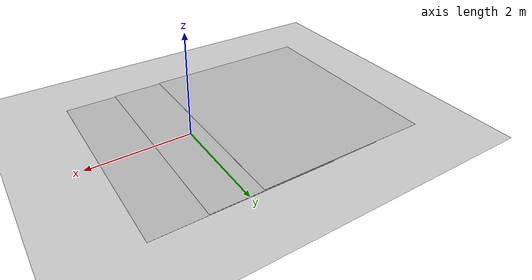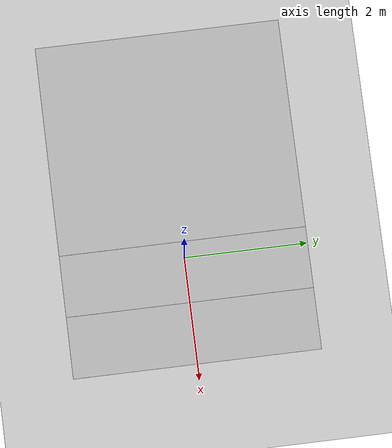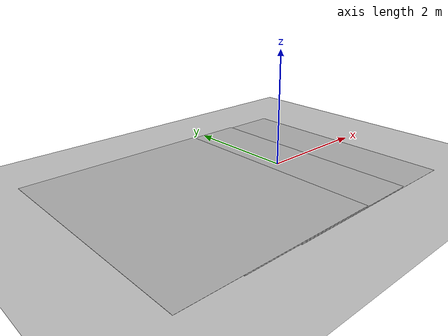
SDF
<?xml version="1.0"?>
<sdf version="1.6">
  <world name="default">
    <!-- A global light source -->
    <include>
      <uri>model://sun</uri>
    </include>

    <!-- A ground plane -->
    <include>
      <uri>model://ground_plane</uri>
        <surface>
          <friction>
            <ode>
              <mu>1</mu>
              <mu2>1</mu2>
            </ode>
          </friction>
        </surface>
    </include>

    <physics type="ode">
      <real_time_update_rate>1000.0</real_time_update_rate>
      <max_step_size>0.001</max_step_size>
      <real_time_factor>1</real_time_factor>
      <ode>
        <solver>
          <type>quick</type>
          <iters>150</iters>
          <precon_iters>0</precon_iters>
          <sor>1.400000</sor>
          <use_dynamic_moi_rescaling>1</use_dynamic_moi_rescaling>
        </solver>
        <constraints>
          <cfm>0.00001</cfm>
          <erp>0.2</erp>
          <contact_max_correcting_vel>2000.000000</contact_max_correcting_vel>
          <contact_surface_layer>0.01000</contact_surface_layer>
        </constraints>
      </ode>
    </physics>

    <include>
      <uri>model://alfombra</uri>
    </include>
    <include>
      <uri>model://alfombra2</uri>
      <pose>-1.0 0 0.015 0 0 0</pose>
    </include>
    <include>
      <uri>model://alfombra3</uri>
      <pose>-2.0 0 0.03 0 0 0</pose>
    </include>

  </world>

  <scene>
    <ambient>0.4 0.4 0.4 1</ambient>
    <background>0.7 0.7 0.7 1</background>
    <shadows>true</shadows>
  </scene>

</sdf>

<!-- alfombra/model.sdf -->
<sdf version="1.6">
  <model name="alfombra">
    <link name="link">
      <inertial>
        <mass>8.1</mass>
      </inertial>

      <collision name="collision">

        <geometry>
          <mesh>
            <uri>file://models/alfombra/meshes/aws_Carpet_01_collision.DAE</uri>
            <scale>1 1 0.95</scale>
          </mesh>
        </geometry>

        <surface>

          <friction>
            <ode>
              <mu>999999999999999999999999999999999999</mu>
              <mu2>999999999999999999999999999999999999</mu2>
            </ode>
          </friction>

          <contact>
            <ode>
            </ode>
          </contact>
        </surface>

        <pose>0 0 0.0 0 0 0 </pose>
      </collision>

      <visual name="visual">
	    <geometry>
          <mesh>
            <uri>file://models/alfombra/meshes/aws_Carpet_01_visual.DAE</uri>
          </mesh>
        </geometry>
      <meta> <layer> 1 </layer></meta>
</visual>
    </link>

    <static>1</static>

  </model>
</sdf>

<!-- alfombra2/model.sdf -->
<sdf version="1.6">
  <model name="alfombra2">
    <link name="link">
      <inertial>
        <mass>8.1</mass>
      </inertial>

      <collision name="collision">

        <geometry>
          <mesh>
            <uri>file://models/alfombra2/meshes/aws_Carpet_01_collision.DAE</uri>
            <scale>1 1 0.95</scale>
          </mesh>
        </geometry>

        <surface>

          <friction>
            <ode>
              <mu>9999999999999999999999999</mu>
              <mu2>999999999999999999999999999</mu2>
            </ode>
          </friction>

          <contact>
            <ode>
            </ode>
          </contact>
        </surface>

        <pose>0 0 0. 0 0 0 </pose>
      </collision>

      <visual name="visual">
	    <geometry>
          <mesh>
            <uri>file://models/alfombra2/meshes/aws_Carpet_01_visual.DAE</uri>
          </mesh>
        </geometry>
      <meta> <layer> 1 </layer></meta>
</visual>
    </link>

    <static>1</static>

  </model>
</sdf>

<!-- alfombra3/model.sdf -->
<sdf version="1.6">
  <model name="alfombra3">
    <link name="link">
      <inertial>
        <mass>8.1</mass>
      </inertial>

      <collision name="collision">

        <geometry>
          <mesh>
            <uri>file://models/alfombra3/meshes/aws_Carpet_01_collision.DAE</uri>
            <scale>1 1 0.95</scale>
          </mesh>
        </geometry>

        <surface>

          <friction>
            <ode>
              <mu>11</mu>
              <mu2>11</mu2>
            </ode>
          </friction>

          <contact>
            <ode>
            </ode>
          </contact>
        </surface>

        <pose>0 0 0. 0 0 0 </pose>
      </collision>

      <visual name="visual">
	    <geometry>
          <mesh>
            <uri>file://models/alfombra3/meshes/aws_Carpet_01_visual.DAE</uri>
          </mesh>
        </geometry>
      <meta> <layer> 1 </layer></meta>
</visual>
    </link>

    <static>1</static>

  </model>
</sdf>
